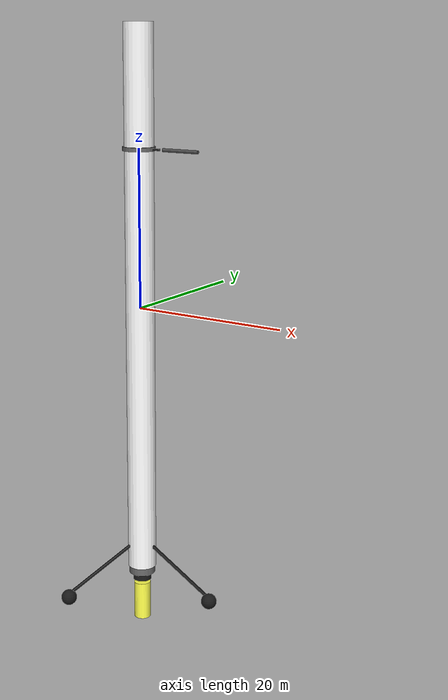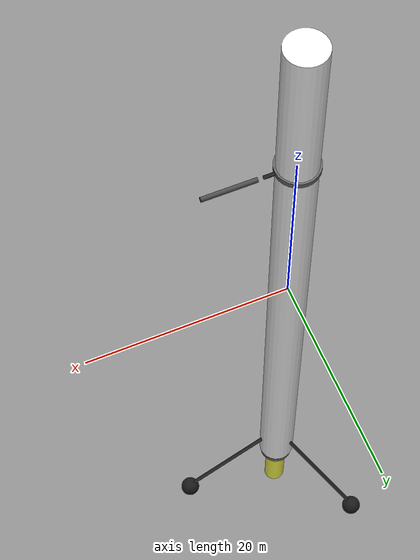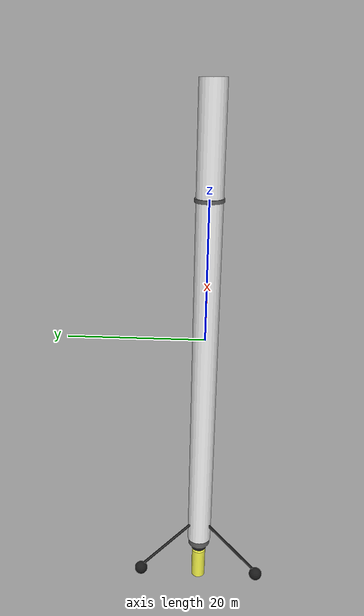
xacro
<?xml version="1.0"?>
<robot xmlns:xacro="http://www.ros.org/wiki/xacro" name="martlet9">

  <xacro:property name="base_height" value="70"/>
  <xacro:property name="base_radius" value="1.85"/>
  <xacro:property name="base_mass" value="400000"/>
  <xacro:property name="base_inertia_radial"
                  value="${base_mass * (0.25 * base_radius * base_radius + base_height * base_height / 12)}"/>
  <xacro:property name="base_inertia" value="${0.5 * base_mass * base_radius * base_radius}"/>
  <xacro:property name="steer_wheel_radius" value="${base_radius * 1.1}"/>
  <xacro:property name="steer_wheel_height" value="0.5"/>
  <xacro:property name="steer_wheel_mass" value="100"/>
  <xacro:property name="steer_gun_size" value="${0.5 * steer_wheel_height}"/>
  <xacro:property name="steer_gun_length" value="1"/>
  <xacro:property name="steer_gun_mass" value="75"/>
  <xacro:property name="steer1_wheel_z" value="20"/>
  <xacro:property name="steer_gun_x" value="${steer_wheel_radius + steer_gun_length / 2}"/>
  <xacro:property name="thruster_casing_mass" value="100000"/>
  <xacro:property name="thruster_casing_r" value="1.7"/>
  <xacro:property name="thruster_casing_l" value="8"/>
  <xacro:property name="thruster_casing_z" value="-32"/>
  <xacro:property name="thruster_mass" value="75000"/>
  <xacro:property name="thruster_r" value="1.2"/>
  <xacro:property name="thruster_l" value="4"/>
  <xacro:property name="thruster_casing_inertia_radial"
                  value="${thruster_casing_mass * (0.25 * thruster_casing_r * thruster_casing_r + thruster_casing_l * thruster_casing_l / 12)}"/>
  <xacro:property name="thruster_casing_inertia"
                  value="${thruster_casing_mass * 0.5 * thruster_casing_r * thruster_casing_r}"/>
  <xacro:property name="thruster_inertia_radial"
                  value="${thruster_mass * (0.25 * thruster_r * thruster_r + thruster_l * thruster_l / 12)}"/>
  <xacro:property name="thruster_inertia"
                  value="${thruster_mass * 0.5 * thruster_r * thruster_r}"/>
  <xacro:property name="thruster_fire_r" value="${thruster_r * 0.9}"/>
  <xacro:property name="thruster_fire_l" value="5"/>
  <xacro:property name="thruster_fire_z" value="${-0.5 - thruster_l/2 - thruster_fire_l/2}"/>
  <xacro:property name="steering_smoke_r" value="${steer_gun_size * 0.9}"/>
  <xacro:property name="steering_smoke_l" value="5"/>
  <xacro:property name="steering_smoke_x" value="${0.5 + steer_gun_length / 2 + steering_smoke_l / 2}"/>

  <material name="white">
    <color rgba="1 1 1 1"/>
  </material>
  <material name="darkgrey">
    <color rgba="0.1 0.1 0.1 1"/>
  </material>
  <material name="grey">
    <color rgba="0.4 0.4 0.4 0.9"/>
  </material>
  <material name="thruster_fire_mat">
    <color rgba="1.0 1.0 0.3 0.0"/>
  </material>
  <material name="steering_smoke_mat">
    <color rgba="0.3 0.3 0.3 0.0"/>
  </material>

  <link name="base">
    <visual>
      <geometry>
        <cylinder length="${base_height}" radius="${base_radius}"/>
      </geometry>
      <material name="white"/>
    </visual>
    <collision>
      <geometry>
        <cylinder length="${base_height}" radius="${base_radius}"/>
      </geometry>
    </collision>
    <inertial>
      <mass value="${base_mass}"/>
      <inertia ixx="${base_inertia_radial}" ixy="0" ixz="0" iyy="${base_inertia_radial}" iyz="0" izz="${base_inertia}"/>
    </inertial>
  </link>
  <link name="thruster_casing">
    <visual>
      <geometry>
        <cylinder length="${thruster_casing_l}" radius="${thruster_casing_r}"/>
      </geometry>
      <material name="grey"/>
    </visual>
    <collision>
      <geometry>
        <cylinder length="${thruster_casing_l" radius="${thruster_casing_r}"/>
      </geometry>
    </collision>
    <inertial>
      <mass value="${thruster_casing_mass}"/>
      <inertia ixx="${thruster_casing_intertia_radial" ixy="0" ixz="0" iyy="${thruster_casing_inertia_radial}" iyz="0" izz="${thruster_casing_inertia}"/>
    </inertial>
  </link>
  <link name="thruster">
    <visual>
      <geometry>
        <cylinder length="${thruster_l}" radius="${thruster_r}"/>
      </geometry>
      <material name="darkgrey"/>
    </visual>
    <collision>
      <geometry>
        <cylinder length="${thruster_l}" radius="${thruster_r}"/>
      </geometry>
    </collision>
    <inertial>
      <mass value="${thruster_mass}"/>
      <inertia ixx="${thruster_inertia_radial}" ixy="0" ixz="0" iyy="${thruster_inertia_radial}" iyz="0" izz="${thruster_inertia}"/>
    </inertial>
  </link>
  <link name="thruster_fire">
    <visual>
      <geometry>
        <cylinder length="${thruster_fire_l}" radius="${thruster_fire_r}"/>
      </geometry>
      <material name="thruster_fire_mat"/>
    </visual>
    <inertial>
      <mass value="0"/>
      <inertia ixx="1" ixy="0" ixz="0" iyy="1" iyz="0" izz="1"/>
    </inertial>
  </link>
  <link name="steer1_wheel">
    <visual>
      <geometry>
        <cylinder length="${steer_wheel_height}" radius="${steer_wheel_radius}"/>
      </geometry>
      <material name="grey"/>
    </visual>
    <collision>
      <geometry>
        <cylinder length="${steer_wheel_height}" radius="${steer_wheel_radius}"/>
      </geometry>
    </collision>
    <inertial>
      <mass value="${steer_wheel_mass}"/>
      <inertia ixx="1" ixy="0" ixz="0" iyy="1" iyz="0" izz="1"/>
    </inertial>
  </link>
  <link name="steer1_gun">
    <visual>
      <geometry>
        <box size="${steer_gun_length} ${steer_gun_size} ${steer_gun_size}"/>
      </geometry>
      <material name="darkgrey"/>
    </visual>
    <collision>
      <geometry>
        <box size="${steer_gun_length} ${steer_gun_size} ${steer_gun_size}"/>
      </geometry>
    </collision>
    <inertial>
      <mass value="${steer_gun_mass}"/>
      <inertia ixx="1" ixy="0" ixz="0" iyy="1" iyz="0" izz="1"/>
    </inertial>
  </link>
  <link name="steer1_smoke">
    <visual>
      <geometry>
        <cylinder length="${steering_smoke_l}" radius="${steering_smoke_r}"/>
      </geometry>
      <origin rpy="0 1.57 0"/>
      <material name="steering_smoke_mat"/>
    </visual>
    <inertial>
      <mass value="0"/>
      <inertia ixx="1" ixy="0" ixz="0" iyy="1" iyz="0" izz="1"/>
    </inertial>
  </link>
  <link name="leg1">
    <visual>
      <geometry>
        <box size="12 0.3 0.3"/>
      </geometry>
      <origin rpy="0 0.524 0"/>
      <material name="darkgrey"/>
    </visual>
    <collision>
      <geometry>
        <box size="12 0.3 0.3"/>
      </geometry>
      <origin rpy="0 0.524 0"/>
    </collision>
    <inertial>
      <mass value="1000"/>
      <inertia ixx="1" ixy="0" ixz="0" iyy="1" iyz="0" izz="1"/>
    </inertial>
  </link>
  <link name="leg2">
    <visual>
      <geometry>
        <box size="12 0.3 0.3"/>
      </geometry>
      <origin rpy="0 0.524 2.094"/>
      <material name="darkgrey"/>
    </visual>
    <collision>
      <geometry>
        <box size="12 0.3 0.3"/>
      </geometry>
      <origin rpy="0 0.524 2.094"/>
    </collision>
    <inertial>
      <mass value="1000"/>
      <inertia ixx="1" ixy="0" ixz="0" iyy="1" iyz="0" izz="1"/>
    </inertial>
  </link>
  <link name="leg3">
    <visual>
      <geometry>
        <box size="12 0.3 0.3"/>
      </geometry>
      <origin rpy="0 0.524 4.189"/>
      <material name="darkgrey"/>
    </visual>
    <collision>
      <geometry>
        <box size="12 0.3 0.3"/>
      </geometry>
      <origin rpy="0 0.524 4.189"/>
    </collision>
    <inertial>
      <mass value="1000"/>
      <inertia ixx="1" ixy="0" ixz="0" iyy="1" iyz="0" izz="1"/>
    </inertial>
  </link>
  <link name="ball1">
    <visual>
      <geometry>
        <sphere radius="1.0"/>
      </geometry>
      <material name="darkgrey"/>
    </visual>
    <collision>
      <geometry>
        <sphere radius="1.0"/>
      </geometry>
    </collision>
    <inertial>
      <mass value="10000"/>
      <inertia ixx="1" ixy="0" ixz="0" iyy="1" iyz="0" izz="1"/>
    </inertial>
  </link>
  <link name="ball2">
    <visual>
      <geometry>
        <sphere radius="1.0"/>
      </geometry>
      <material name="darkgrey"/>
    </visual>
    <collision>
      <geometry>
        <sphere radius="1.0"/>
      </geometry>
    </collision>
    <inertial>
      <mass value="10000"/>
      <inertia ixx="1" ixy="0" ixz="0" iyy="1" iyz="0" izz="1"/>
    </inertial>
  </link>
  <link name="ball3">
    <visual>
      <geometry>
        <sphere radius="1.0"/>
      </geometry>
      <material name="darkgrey"/>
    </visual>
    <collision>
      <geometry>
        <sphere radius="1.0"/>
      </geometry>
    </collision>
    <inertial>
      <mass value="10000"/>
      <inertia ixx="1" ixy="0" ixz="0" iyy="1" iyz="0" izz="1"/>
    </inertial>
  </link>

  <joint name="base_to_leg1" type="fixed">
    <parent link="base"/>
    <child link="leg1"/>
    <origin xyz="6.0 0 -34.5"/>
  </joint>
  <joint name="base_to_leg2" type="fixed">
    <parent link="base"/>
    <child link="leg2"/>
    <origin xyz="-3.0 5.20 -34.5"/>
  </joint>
  <joint name="base_to_leg3" type="fixed">
    <parent link="base"/>
    <child link="leg3"/>
    <origin xyz="-3.0 -5.20 -34.5"/>
  </joint>
  <joint name="base_to_thruster_casing" type="fixed">
    <parent link="base"/>
    <child link="thruster_casing"/>
    <origin xyz="0 0 ${thruster_casing_z}"/>
  </joint>
  <joint name="thruster_casing_to_thruster" type="fixed">
    <parent link="thruster_casing"/>
    <child link="thruster"/>
    <origin xyz="0 0 -3"/>
  </joint>
  <joint name="thruster_to_fire" type="fixed">
    <parent link="thruster"/>
    <child link="thruster_fire"/>
    <origin xyz="0 0 ${thruster_fire_z}"/>
  </joint>
  <joint name="base_to_steer1_wheel" type="continuous">
    <parent link="base"/>
    <child link="steer1_wheel"/>
    <origin xyz="0 0 ${steer1_wheel_z}"/>
    <axis xyz="0 0 1"/>
  </joint>
  <joint name="steer1_wheel_to_steer1_gun" type="fixed">
    <parent link="steer1_wheel"/>
    <child link="steer1_gun"/>
    <origin xyz="${steer_gun_x} 0 0"/>
  </joint>
  <joint name="steer1_gun_to_smoke" type="fixed">
    <parent link="steer1_gun"/>
    <child link="steer1_smoke"/>
    <origin xyz="${steering_smoke_x} 0 0"/>
  </joint>
  <joint name="leg1_to_ball" type="fixed">
    <parent link="leg1"/>
    <child link="ball1"/>
    <origin xyz="4.5 0 -3"/>
  </joint>
  <joint name="leg2_to_ball" type="fixed">
    <parent link="leg2"/>
    <child link="ball2"/>
    <origin xyz="-2.25 3.89 -3"/>
  </joint>
  <joint name="leg3_to_ball" type="fixed">
    <parent link="leg3"/>
    <child link="ball3"/>
    <origin xyz="-2.25 -3.89 -3"/>
  </joint>
</robot>
